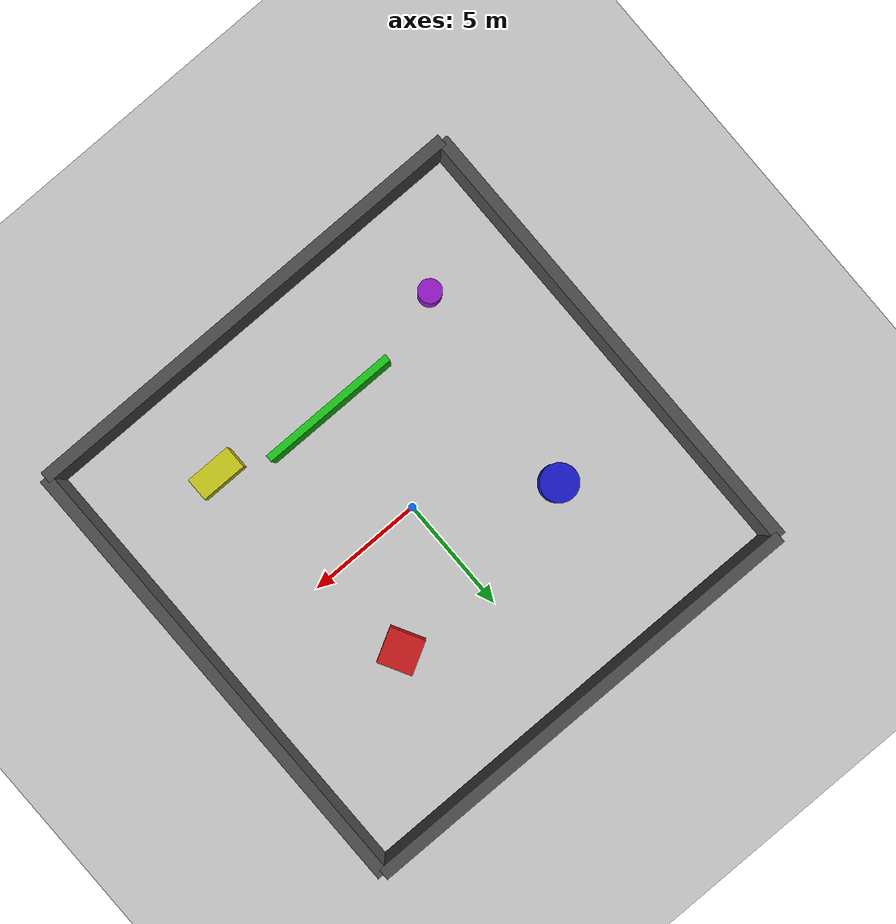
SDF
<sdf version="1.6">
 <world name="default">
  <plugin filename="gz-sim-physics-system" name="gz::sim::systems::Physics"/>
  <plugin filename="gz-sim-user-commands-system" name="gz::sim::systems::UserCommands"/>
  <plugin filename="gz-sim-scene-broadcaster-system" name="gz::sim::systems::SceneBroadcaster"/>
  <plugin filename="gz-sim-sensors-system" name="gz::sim::systems::Sensors">
   <render_engine>ogre2</render_engine>
  </plugin>
  <plugin filename="gz-sim-navsat-system" name="gz::sim::systems::NavSat"/>
  <gravity>0 0 -9.8</gravity>
  <magnetic_field>6e-06 2.3e-05 -4.2e-05</magnetic_field>
  <atmosphere type="adiabatic"/>
  <physics name="default_physics" default="0" type="ode">
   <max_step_size>0.001</max_step_size>
   <real_time_factor>1</real_time_factor>
   <real_time_update_rate>1000</real_time_update_rate>
  </physics>
  <scene><ambient>0.4 0.4 0.4 1</ambient><background>0.7 0.7 0.7 1</background><shadows>1</shadows></scene>
  <light name="sun" type="directional">
   <pose>0 0 10 0 0 0</pose>
   <diffuse>0.8 0.8 0.8 1</diffuse>
   <specular>0.2 0.2 0.2 1</specular>
   <attenuation>
    <range>1000</range>
    <constant>0.9</constant>
    <linear>0.01</linear>
    <quadratic>0.001</quadratic>
   </attenuation>
   <direction>-0.5 0.1 -0.9</direction>
  </light>
  <model name="ground_plane">
   <static>true</static>
   <link name="link">
    <collision name="collision">
     <geometry><plane><normal>0 0 1</normal><size>100 100</size></plane></geometry>
    </collision>
    <visual name="visual">
     <cast_shadows>0</cast_shadows>
     <geometry><plane><normal>0 0 1</normal><size>100 100</size></plane></geometry>
     <material><ambient>0.8 0.8 0.8 1</ambient><diffuse>0.8 0.8 0.8 1</diffuse></material>
    </visual>
   </link>
  </model>
  <model name="wall_north">
   <static>true</static>
   <pose>0 10 1 0 0 0</pose>
   <link name="link">
    <collision name="collision"><geometry><box><size>20 0.5 2</size></box></geometry></collision>
    <visual name="visual">
     <geometry><box><size>20 0.5 2</size></box></geometry>
     <material><ambient>0.3 0.3 0.3 1</ambient><diffuse>0.3 0.3 0.3 1</diffuse></material>
    </visual>
   </link>
  </model>
  <model name="wall_south">
   <static>true</static>
   <pose>0 -10 1 0 0 0</pose>
   <link name="link">
    <collision name="collision"><geometry><box><size>20 0.5 2</size></box></geometry></collision>
    <visual name="visual">
     <geometry><box><size>20 0.5 2</size></box></geometry>
     <material><ambient>0.3 0.3 0.3 1</ambient><diffuse>0.3 0.3 0.3 1</diffuse></material>
    </visual>
   </link>
  </model>
  <model name="wall_east">
   <static>true</static>
   <pose>10 0 1 0 0 1.5708</pose>
   <link name="link">
    <collision name="collision"><geometry><box><size>20 0.5 2</size></box></geometry></collision>
    <visual name="visual">
     <geometry><box><size>20 0.5 2</size></box></geometry>
     <material><ambient>0.3 0.3 0.3 1</ambient><diffuse>0.3 0.3 0.3 1</diffuse></material>
    </visual>
   </link>
  </model>
  <model name="wall_west">
   <static>true</static>
   <pose>-10 0 1 0 0 1.5708</pose>
   <link name="link">
    <collision name="collision"><geometry><box><size>20 0.5 2</size></box></geometry></collision>
    <visual name="visual">
     <geometry><box><size>20 0.5 2</size></box></geometry>
     <material><ambient>0.3 0.3 0.3 1</ambient><diffuse>0.3 0.3 0.3 1</diffuse></material>
    </visual>
   </link>
  </model>
  <model name="obstacle_red_box">
   <static>true</static>
   <pose>4 4 0.5 0 0 0.5</pose>
   <link name="link">
    <collision name="collision"><geometry><box><size>1.5 1.5 1</size></box></geometry></collision>
    <visual name="visual">
     <geometry><box><size>1.5 1.5 1</size></box></geometry>
     <material><ambient>0.8 0.1 0.1 1</ambient><diffuse>0.8 0.1 0.1 1</diffuse></material>
    </visual>
   </link>
  </model>
  <model name="obstacle_blue_cylinder">
   <static>true</static>
   <pose>-5 3 0.5 0 0 0</pose>
   <link name="link">
    <collision name="collision">
     <geometry><cylinder><radius>0.8</radius><length>1</length></cylinder></geometry>
    </collision>
    <visual name="visual">
     <geometry><cylinder><radius>0.8</radius><length>1</length></cylinder></geometry>
     <material><ambient>0.1 0.1 0.8 1</ambient><diffuse>0.1 0.1 0.8 1</diffuse></material>
    </visual>
   </link>
  </model>
  <model name="obstacle_green_wall">
   <static>true</static>
   <pose>0 -5 1 0 0 0</pose>
   <link name="link">
    <collision name="collision"><geometry><box><size>6 0.3 2</size></box></geometry></collision>
    <visual name="visual">
     <geometry><box><size>6 0.3 2</size></box></geometry>
     <material><ambient>0.1 0.8 0.1 1</ambient><diffuse>0.1 0.8 0.1 1</diffuse></material>
    </visual>
   </link>
  </model>
  <model name="obstacle_yellow_box">
   <static>true</static>
   <pose>5 -6 0.5 0 0 0</pose>
   <link name="link">
    <collision name="collision"><geometry><box><size>2 1 1</size></box></geometry></collision>
    <visual name="visual">
     <geometry><box><size>2 1 1</size></box></geometry>
     <material><ambient>0.8 0.8 0.1 1</ambient><diffuse>0.8 0.8 0.1 1</diffuse></material>
    </visual>
   </link>
  </model>
  <model name="obstacle_purple_cylinder">
   <static>true</static>
   <pose>-6 -6 0.5 0 0 0</pose>
   <link name="link">
    <collision name="collision">
     <geometry><cylinder><radius>0.5</radius><length>1</length></cylinder></geometry>
    </collision>
    <visual name="visual">
     <geometry><cylinder><radius>0.5</radius><length>1</length></cylinder></geometry>
     <material><ambient>0.6 0.1 0.8 1</ambient><diffuse>0.6 0.1 0.8 1</diffuse></material>
    </visual>
   </link>
  </model>
 </world>
</sdf>
